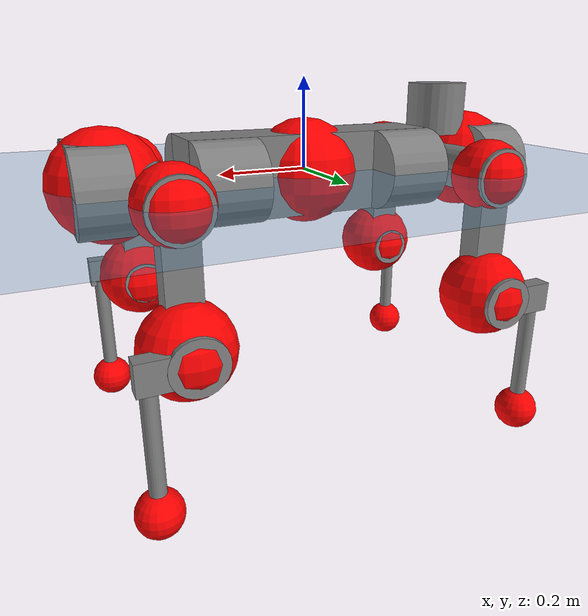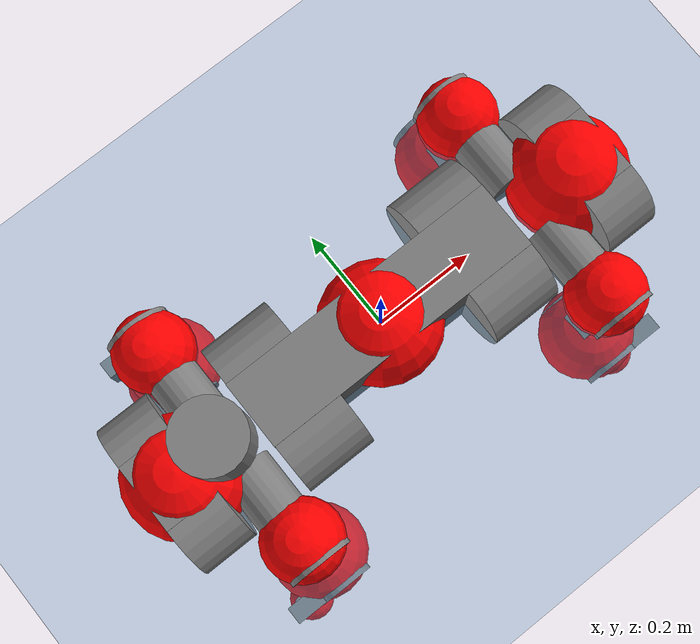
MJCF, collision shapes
<mujoco model="anymal_c">
  <compiler angle="radian" assetdir="assets" balanceinertia="true" inertiafromgeom="false"/>

  <option timestep="0.005" density="1.2" viscosity="2e-05"/>

  <size nkey="1"/>

  <visual>
    <quality shadowsize="8192"/>
    <map shadowclip="0.5"/>
  </visual>

  <default>
    <default class="/">
      <material specular="0" shininess="0.25"/>
      <geom contype="0" conaffinity="0" group="1" solref="-1000 -80"/>
      <site size="0.01 0.005 0.005" group="5"/>
      <general forcelimited="true" forcerange="-80 80" biastype="affine" gainprm="80" biasprm="0 -80 -2"/>
      <default class="anymal_c">
        <joint armature="0.01" damping="0.01" frictionloss="0.1"/>
        <default class="visual">
          <geom type="mesh" group="2"/>
          <default class="visual_zflip"/>
        </default>
        <default class="collision">
          <geom type="cylinder" group="3"/>
          <default class="foot">
            <geom size="0.03 0 0" type="sphere" condim="6" priority="1" friction="0.8 0.02 0.01" solimp="0.015 1 0.03"/>
          </default>
        </default>
      </default>
      <default class="reward_collision_sphere">
        <geom group="5" rgba="1 0 0 1"/>
      </default>
    </default>
  </default>

  <asset>
    <texture type="skybox" colorspace="auto" name="//unnamed_texture_0" builtin="gradient" rgb1="0.95 0.95 0.95" rgb2="0.95 0.95 0.95" width="100" height="600"/>
    <texture type="2d" colorspace="auto" name="texplane" builtin="checker" rgb1="0.345 0.575 0.748" rgb2="0.345 0.575 0.748" markrgb="1 1 1" width="512" height="512"/>
    <texture type="2d" colorspace="linear" name="base" file="base.png"/>
    <texture type="2d" colorspace="linear" name="top_shell" file="top_shell.png"/>
    <texture type="2d" colorspace="linear" name="bottom_shell" file="bottom_shell.png"/>
    <texture type="2d" colorspace="linear" name="remote" file="remote.png"/>
    <texture type="2d" colorspace="linear" name="hatch" file="hatch.png"/>
    <texture type="2d" colorspace="linear" name="handle" file="handle.png"/>
    <texture type="2d" colorspace="linear" name="face" file="face.png"/>
    <texture type="2d" colorspace="linear" name="battery" file="battery.png"/>
    <texture type="2d" colorspace="linear" name="lidar_cage" file="lidar_cage.png"/>
    <texture type="2d" colorspace="linear" name="depth_camera" file="depth_camera.png"/>
    <texture type="2d" colorspace="linear" name="wide_angle_camera" file="wide_angle_camera.png"/>
    <texture type="2d" colorspace="linear" name="lidar" file="lidar.png"/>
    <texture type="2d" colorspace="linear" name="drive" file="drive.png"/>
    <texture type="2d" colorspace="linear" name="hip_l" file="hip_l.png"/>
    <texture type="2d" colorspace="linear" name="shank_l" file="shank_l.png"/>
    <texture type="2d" colorspace="linear" name="foot" file="foot.png"/>
    <texture type="2d" colorspace="linear" name="thigh" file="thigh.png"/>
    <texture type="2d" colorspace="linear" name="shank_r" file="shank_r.png"/>
    <texture type="2d" colorspace="linear" name="hip_r" file="hip_r.png"/>
    <material name="MatPlane" class="/" texture="texplane" texuniform="true" texrepeat="2 2" specular="0.9" shininess="0.5"/>
    <material name="black_plastic" class="/" rgba="0.007 0.007 0.007 1"/>
    <material name="green" class="/" rgba="0.052 0.178 0.033 1"/>
    <material name="red" class="/" rgba="0.178 0.006 0.005 1"/>
    <material name="yellow" class="/" rgba="0.178 0.119 0.006 1"/>
    <material name="lwl" class="/" rgba="0.8 0.8 0.8 1"/>
    <material name="base" class="/" texture="base"/>
    <material name="top_shell" class="/" texture="top_shell"/>
    <material name="bottom_shell" class="/" texture="bottom_shell"/>
    <material name="hip_l" class="/" texture="hip_l"/>
    <material name="thigh" class="/" texture="thigh"/>
    <material name="shank_l" class="/" texture="shank_l"/>
    <material name="foot" class="/" texture="foot"/>
    <material name="hip_r" class="/" texture="hip_r"/>
    <material name="shank" class="/" texture="shank_r"/>
    <material name="hatch" class="/" texture="hatch"/>
    <material name="remote" class="/" texture="remote"/>
    <material name="handle" class="/" texture="handle"/>
    <material name="face" class="/" texture="face"/>
    <material name="depth_camera" class="/" texture="depth_camera"/>
    <material name="wide_angle_camera" class="/" texture="wide_angle_camera"/>
    <material name="battery" class="/" texture="battery"/>
    <material name="lidar_cage" class="/" texture="lidar_cage"/>
    <material name="lidar" class="/" texture="lidar"/>
    <material name="drive" class="/" texture="drive"/>
    <mesh name="base_0" class="/" file="base_0.obj"/>
    <mesh name="base_1" class="/" file="base_1.obj"/>
    <mesh name="base_2" class="/" file="base_2.obj"/>
    <mesh name="base_3" class="/" file="base_3.obj"/>
    <mesh name="base_4" class="/" file="base_4.obj"/>
    <mesh name="base_5" class="/" file="base_5.obj"/>
    <mesh name="top_shell" class="/" file="top_shell.obj"/>
    <mesh name="bottom_shell" class="/" file="bottom_shell.obj"/>
    <mesh name="remote" class="/" file="remote.obj"/>
    <mesh name="handle" class="/" file="handle.obj"/>
    <mesh name="face" class="/" file="face.obj"/>
    <mesh name="wide_angle_camera" class="/" file="wide_angle_camera.obj"/>
    <mesh name="depth_camera" class="/" file="depth_camera.obj"/>
    <mesh name="battery" class="/" file="battery.obj"/>
    <mesh name="lidar_cage" class="/" file="lidar_cage.obj"/>
    <mesh name="lidar" class="/" file="lidar.obj"/>
    <mesh name="drive" class="/" file="drive.obj"/>
    <mesh name="hip_l" class="/" file="hip_l.obj"/>
    <mesh name="thigh" class="/" file="thigh.obj"/>
    <mesh name="shank_l" class="/" file="shank_l.obj"/>
    <mesh name="foot" class="/" file="foot.obj"/>
    <mesh name="hip_r" class="/" file="hip_r.obj"/>
    <mesh name="hatch" class="/" file="hatch.obj"/>
    <mesh name="shank_r" class="/" file="shank_r.obj"/>
  </asset>

  <worldbody>
    <geom name="floor" class="/" size="100 100 0.125" type="plane" group="0" material="MatPlane"/>
    <light name="toplight_shadow" class="/" pos="0 0 5" dir="0.0990148 0.0990148 -0.990148" type="directional" ambient="0.04 0.04 0.04" diffuse="0.55 0.55 0.55" specular="0.12 0.12 0.12"/>
    <light name="toplight_fill" class="/" pos="0 0 5" dir="0.0990148 0.0990148 -0.990148" type="directional" castshadow="false" ambient="0.04 0.04 0.04" diffuse="0.3 0.3 0.3" specular="0.08 0.08 0.08"/>
    <body name="trunk" childclass="anymal_c" pos="-0.000598237 0.000860864 -0.00281343" quat="1 -0.000139838 0.000150319 2.80765e-05">
      <inertial pos="0.00244387 0.00241052 0.0442509" quat="0.496897 0.502935 0.500134 0.500015" mass="18.3797" diaginertia="0.564004 0.679929 0.169585"/>
      <joint name="//unnamed_joint_0" type="free" armature="0" damping="0" frictionloss="0"/>
      <geom name="//unnamed_geom_1" class="visual" material="green" mesh="base_0"/>
      <geom name="//unnamed_geom_2" class="visual" material="yellow" mesh="base_1"/>
      <geom name="//unnamed_geom_3" class="visual" material="red" mesh="base_2"/>
      <geom name="//unnamed_geom_4" class="visual" material="black_plastic" mesh="base_3"/>
      <geom name="//unnamed_geom_5" class="visual" material="lwl" mesh="base_4"/>
      <geom name="//unnamed_geom_6" class="visual" material="base" mesh="base_5"/>
      <geom name="trunk_1" class="collision" size="0.283043 0.0683207 0.0878409" type="box"/>
      <geom name="trunk_2" class="collision" size="0.0878409 0.0707608" pos="0.211442 0.0709309 0" quat="0.707107 0 0.707107 0"/>
      <geom name="trunk_3" class="collision" size="0.0878409 0.0707608" pos="-0.211442 0.0709309 0" quat="0.707107 0 0.707107 0"/>
      <geom name="trunk_4" class="collision" size="0.0878409 0.0707608" pos="0.211442 -0.0709309 0" quat="0.707107 0 0.707107 0"/>
      <geom name="trunk_5" class="collision" size="0.0878409 0.0707608" pos="-0.211442 -0.0709309 0" quat="0.707107 0 0.707107 0"/>
      <geom name="//unnamed_geom_12" class="visual" material="top_shell" mesh="top_shell"/>
      <geom name="//unnamed_geom_13" class="visual" material="bottom_shell" mesh="bottom_shell"/>
      <geom name="//unnamed_geom_14" class="visual" material="remote" mesh="remote"/>
      <geom name="//unnamed_geom_15" class="visual" material="handle" mesh="handle"/>
      <geom name="//unnamed_geom_16" class="visual" pos="0.402954 0 0" quat="1 0 0 0" material="face" mesh="face"/>
      <geom name="trunk_6" class="collision" size="0.0536806 0.0683207 0.0878409" pos="0.456422 0 0" type="box"/>
      <geom name="//unnamed_geom_18" class="collision" size="0.0878409 0.0536806" pos="0.456422 0.0709309 0" quat="0.707107 0 0.707107 0"/>
      <geom name="//unnamed_geom_19" class="collision" size="0.0878409 0.0536806" pos="0.456422 -0.0709309 0" quat="0.707107 0 0.707107 0"/>
      <geom name="//unnamed_geom_20" class="visual" pos="0.44879 0 -0.0272989" quat="0.965926 0 0.258819 0" material="depth_camera" mesh="depth_camera"/>
      <geom name="//unnamed_geom_21" class="visual" pos="0.498711 0 0.0141105" material="wide_angle_camera" mesh="wide_angle_camera"/>
      <geom name="//unnamed_geom_22" class="visual_zflip" pos="-0.402954 0 0" quat="0 0 0 1" material="face" mesh="face"/>
      <geom name="trunk_7" class="collision" size="0.0536806 0.0683207 0.0878409" pos="-0.456422 0 0" quat="0 0 0 1" type="box"/>
      <geom name="//unnamed_geom_24" class="collision" size="0.0878409 0.0536806" pos="-0.456422 -0.0709309 0" quat="0 -0.707107 0 0.707107"/>
      <geom name="//unnamed_geom_25" class="collision" size="0.0878409 0.0536806" pos="-0.456422 0.0709309 0" quat="0 -0.707107 0 0.707107"/>
      <geom name="//unnamed_geom_26" class="visual" pos="-0.44879 0 -0.0272989" quat="0 -0.258819 0 0.965926" material="depth_camera" mesh="depth_camera"/>
      <geom name="//unnamed_geom_27" class="visual_zflip" pos="-0.498711 0 0.0141105" quat="0 0 0 1" material="wide_angle_camera" mesh="wide_angle_camera"/>
      <geom name="//unnamed_geom_28" class="visual" material="battery" mesh="battery"/>
      <geom name="//unnamed_geom_29" class="visual" pos="0 0.0780155 0.0276068" quat="0.683013 -0.183013 0.183013 0.683013" material="depth_camera" mesh="depth_camera"/>
      <geom name="//unnamed_geom_30" class="visual" pos="0 -0.0780155 0.0276068" quat="0.683013 0.183013 0.183013 -0.683013" material="depth_camera" mesh="depth_camera"/>
      <geom name="//unnamed_geom_31" class="visual" pos="-0.353861 0 0.0692802" quat="1 0 0 0" material="lidar_cage" mesh="lidar_cage"/>
      <geom name="trunk_8" class="collision" size="0.0683207 0.0585606" pos="-0.353861 0 0.125835"/>
      <geom name="//unnamed_geom_33" class="visual" pos="-0.353861 1.61675e-05 0.134036" quat="0.707107 0 0 -0.707107" material="lidar" mesh="lidar"/>
      <geom name="//unnamed_geom_34" class="visual" pos="0.291547 0.105358 1.21976e-09" quat="0.258819 0.965926 0 0" material="drive" mesh="drive"/>
      <geom name="//unnamed_geom_35" class="visual" pos="0.291547 -0.105358 -1.21976e-09" quat="0.258819 -0.965926 0 0" material="drive" mesh="drive"/>
      <geom name="//unnamed_geom_36" class="visual" pos="-0.291547 0.105358 -1.21976e-09" quat="0 0 0.965926 -0.258819" material="drive" mesh="drive"/>
      <geom name="//unnamed_geom_37" class="visual" pos="-0.291547 -0.105358 1.21976e-09" quat="0 0 -0.965926 -0.258819" material="drive" mesh="drive"/>
      <geom name="//unnamed_geom_38" class="visual" pos="0.112769 0 0.0688089" quat="1 0 0 0" material="hatch" mesh="hatch"/>
      <geom name="//unnamed_geom_39" class="reward_collision_sphere" size="0.117121"/>
      <geom name="//unnamed_geom_40" class="reward_collision_sphere" size="0.117121" pos="0.437466 0 0"/>
      <geom name="//unnamed_geom_41" class="reward_collision_sphere" size="0.117121" pos="-0.437466 0 0"/>
      <site name="imu" pos="0.245467 0.0222744 0.0471371" size="0.00976011"/>
      <camera name="track" pos="0 -2.0266 0" quat="0.707107 0.707107 0 0" mode="trackcom"/>
      <camera name="ego_camera" pos="0.437466 0 -0.0377035" quat="-0.5 -0.5 0.5 0.5"/>
      <body name="LF_HIP" pos="0.291829 0.104162 0.00169426" quat="0.258387 0.966041 0.00137561 8.82462e-06">
        <inertial pos="0.056715 -0.0173424 -0.00776477" quat="-0.129044 0.709621 -0.133214 0.679736" mass="2.53557" diaginertia="0.00512635 0.00552804 0.00245468"/>
        <joint name="LF_HAA" pos="0 0 0" axis="0.999999 -0.00124211 -0.000278094" range="-0.724216 0.490396" armature="0.00972838" damping="0.0248306" frictionloss="0.0999331"/>
        <geom name="//unnamed_geom_42" class="visual" pos="0 7.17529e-05 -1.17854e-05" quat="0.258819 -0.965926 0 0" material="hip_l" mesh="hip_l"/>
        <geom name="//unnamed_geom_43" class="visual" pos="0.0582315 -0.0710766 -0.0405131" quat="0.183013 -0.683013 0.683013 0.183013" material="drive" mesh="drive"/>
        <geom name="//unnamed_geom_44" class="collision" size="0.0488005 0.0683207" pos="0.0582315 -0.0121188 -0.00650857" quat="-0.353553 -0.612372 0.612372 -0.353553"/>
        <body name="LF_THIGH" pos="0.0614392 -0.0750126 -0.0362421" quat="0.183162 -0.682529 0.68339 0.183257">
          <inertial pos="0.0323015 -0.00243326 -0.232136" quat="0.993247 -0.00568435 -0.0804672 0.0833855" mass="2.81266" diaginertia="0.026474 0.0307749 0.0029973"/>
          <joint name="LF_HFE" pos="0 0 0" axis="0.999959 0.00881224 0.00208127" stiffness="0.00494143" range="-3.09288 3.12917" armature="0.0084913" damping="0.0072594" frictionloss="0.0855622"/>
          <geom name="//unnamed_geom_45" class="visual" pos="-0.000818764 -1.29018e-06 0" quat="0.707107 0 0 -0.707107" material="thigh" mesh="thigh"/>
          <geom name="//unnamed_geom_46" class="collision" size="0.0634407 0.0390404" pos="0.0388858 0 0" quat="0.5 0.5 -0.5 -0.5"/>
          <geom name="//unnamed_geom_47" class="collision" size="0.0366004 0.0292803 0.137924" pos="0.0291644 0 -0.133201" quat="0.707107 0 0 -0.707107" type="box"/>
          <geom name="//unnamed_geom_48" class="visual" pos="0.0975062 0 -0.268638" quat="1 0 0 0" material="drive" mesh="drive"/>
          <geom name="//unnamed_geom_49" class="collision" size="0.0488005 0.0683207" pos="0.029456 0 -0.268638" quat="0.707107 0 0.707107 0"/>
          <geom name="//unnamed_geom_50" class="reward_collision_sphere" size="0.0780808" pos="0.0243036 0 0"/>
          <body name="LF_SHANK" pos="0.0978442 -0.000744857 -0.268494" quat="0.999999 0.000166605 0.00132358 -0.000129013">
            <inertial pos="0.00380291 -0.0621903 -0.0736641" quat="0.993078 -0.116163 0.00782931 -0.0154902" mass="0.545849" diaginertia="0.00843862 0.0100682 0.000846226"/>
            <joint name="LF_KFE" pos="0 0 0" axis="0.99992 0.00745169 -0.0102469" stiffness="0.00830658" range="-3.15074 3.12008" armature="0.0110129" damping="2.30556e-05" frictionloss="0.111197"/>
            <geom name="//unnamed_geom_51" class="visual" pos="-0.000266981 -0.00142356 0" quat="0.707107 0 0 -0.707107" material="shank_l" mesh="shank_l"/>
            <geom name="LF_kfe_act" class="collision" size="0.0585606 0.0195202" pos="0.0194429 0 0" quat="0.5 0.5 -0.5 -0.5"/>
            <geom name="//unnamed_geom_53" class="collision" size="0.0561196 0.0329404 0.0185442" pos="0.0194429 -0.0582636 0" quat="0.5 0.5 -0.5 -0.5" type="box"/>
            <geom name="//unnamed_geom_54" class="visual" pos="0.0126866 -0.0895783 -0.318566" quat="0.382683 0 0 -0.92388" material="foot" mesh="foot"/>
            <geom name="LF_calf" class="collision" size="0.0170802 0.137863" pos="0.0126865 -0.0891196 -0.159283" quat="0.707107 0 0 -0.707107"/>
            <geom name="LF_foot" class="foot" size="0.0256027" pos="0.0126865 -0.0891196 -0.297358" quat="0.707107 0 0 -0.707107"/>
            <geom name="//unnamed_geom_57" class="reward_collision_sphere" size="0.0976011" pos="-0.0486073 0 0"/>
            <geom name="//unnamed_geom_58" class="reward_collision_sphere" size="0.0488005" pos="0.0126865 -0.0891196 -0.297358"/>
            <site name="LF_foot" class="foot" pos="0.0126865 -0.0891196 -0.297358" quat="0.707107 0 0 -0.707107" size="0.00976011"/>
          </body>
        </body>
      </body>
      <body name="RF_HIP" pos="0.292598 -0.104483 -0.000240991" quat="0.259131 -0.965842 0.000451794 0.000826956">
        <inertial pos="0.0580394 0.0147853 -0.00836725" quat="0.13798 0.676003 0.123379 0.713273" mass="2.58373" diaginertia="0.00479171 0.00508588 0.00229103"/>
        <joint name="RF_HAA" pos="0 0 0" axis="0.999924 0.00878736 0.00863583" range="-0.446004 0.720098" armature="0.0107195" damping="0.00617607" frictionloss="0.0913735"/>
        <geom name="//unnamed_geom_59" class="visual" pos="0 -7.17524e-05 -1.17853e-05" quat="0.258819 0.965926 0 0" material="hip_r" mesh="hip_r"/>
        <geom name="//unnamed_geom_60" class="visual" pos="0.0582315 0.0710766 -0.0405131" quat="0.183013 0.683013 0.683013 -0.183013" material="drive" mesh="drive"/>
        <geom name="//unnamed_geom_61" class="collision" size="0.0488005 0.0683207" pos="0.0582315 0.0121188 -0.00650857" quat="-0.353553 0.612372 0.612372 0.353553"/>
        <body name="RF_THIGH" pos="0.0588739 0.0739568 -0.0394671" quat="0.182706 0.683161 0.682723 -0.183846">
          <inertial pos="0.0328199 -0.00191844 -0.230697" quat="0.993553 0.00204694 -0.0815383 0.0787446" mass="2.84311" diaginertia="0.0255334 0.0299015 0.0030566"/>
          <joint name="RF_HFE" pos="0 0 0" axis="0.999919 0.00226876 0.0125289" range="-3.14603 3.17215" armature="0.00985348" damping="0.00593739" frictionloss="0.111211"/>
          <geom name="//unnamed_geom_62" class="visual" pos="-0.000818764 -1.29018e-06 0" quat="0.707107 0 0 -0.707107" material="thigh" mesh="thigh"/>
          <geom name="//unnamed_geom_63" class="collision" size="0.0634407 0.0390404" pos="0.0388858 0 0" quat="0.5 0.5 0.5 0.5"/>
          <geom name="//unnamed_geom_64" class="collision" size="0.0366004 0.0292803 0.137924" pos="0.0291644 0 -0.133201" quat="0.707107 0 0 0.707107" type="box"/>
          <geom name="//unnamed_geom_65" class="visual" pos="0.0975062 0 -0.268638" quat="1 0 0 0" material="drive" mesh="drive"/>
          <geom name="//unnamed_geom_66" class="collision" size="0.0488005 0.0683207" pos="0.029456 0 -0.268638" quat="0.707107 0 0.707107 0"/>
          <geom name="//unnamed_geom_67" class="reward_collision_sphere" size="0.0780808" pos="0.0243036 0 0"/>
          <body name="RF_SHANK" pos="0.0947958 -0.00155963 -0.271242" quat="1 -6.99364e-05 -1.78161e-05 -5.33571e-05">
            <inertial pos="0.00526328 0.0611521 -0.0762971" quat="0.993376 0.112494 -6.49988e-05 0.0234258" mass="0.551899" diaginertia="0.00878857 0.00984945 0.000807523"/>
            <joint name="RF_KFE" pos="0 0 0" axis="0.999999 -0.000999527 -0.00117855" range="-3.14671 3.18254" armature="0.00861141" damping="0.0181353" frictionloss="0.0844085"/>
            <geom name="//unnamed_geom_68" class="visual" pos="-0.00026698 0.00142355 0" quat="0.707107 0 0 0.707107" material="shank" mesh="shank_r"/>
            <geom name="RF_kfe_act" class="collision" size="0.0585606 0.0195202" pos="0.0194429 0 0" quat="0.5 0.5 0.5 0.5"/>
            <geom name="//unnamed_geom_70" class="collision" size="0.0561196 0.0329404 0.0185442" pos="0.0194429 0.0582636 0" quat="0.5 0.5 0.5 0.5" type="box"/>
            <geom name="//unnamed_geom_71" class="visual" pos="0.0126864 0.0895783 -0.318566" quat="0.382683 0 0 0.92388" material="foot" mesh="foot"/>
            <geom name="RF_calf" class="collision" size="0.0170802 0.137863" pos="0.0126865 0.0891196 -0.159283" quat="0.707107 0 0 0.707107"/>
            <geom name="RF_foot" class="foot" size="0.0243153" pos="0.0126865 0.0891196 -0.297358" quat="0.707107 0 0 0.707107"/>
            <geom name="//unnamed_geom_74" class="reward_collision_sphere" size="0.0976011" pos="-0.0486073 0 0"/>
            <geom name="//unnamed_geom_75" class="reward_collision_sphere" size="0.0488005" pos="0.0126865 0.0891196 -0.297358"/>
            <site name="RF_foot" class="foot" pos="0.0126865 0.0891196 -0.297358" quat="0.707107 0 0 0.707107" size="0.00976011"/>
          </body>
        </body>
      </body>
      <body name="LH_HIP" pos="-0.291 0.105419 -0.00144298" quat="0.000184186 0.000152039 0.966088 -0.258213">
        <inertial pos="0.0578706 0.0154456 -0.00992463" quat="0.13903 0.677241 0.128015 0.711075" mass="2.63318" diaginertia="0.00512511 0.00539446 0.00250599"/>
        <joint name="LH_HAA" pos="0 0 0" axis="0.999994 -0.00275547 0.00230778" stiffness="0.00814508" range="-0.499802 0.670179" armature="0.00908223" damping="0" frictionloss="0.10176"/>
        <geom name="//unnamed_geom_76" class="visual" pos="0 -7.17524e-05 -1.17853e-05" quat="-0.258819 -0.965926 0 0" material="hip_r" mesh="hip_r"/>
        <geom name="//unnamed_geom_77" class="visual" pos="0.0582315 0.0710766 -0.0405131" quat="0.183013 0.683013 0.683013 -0.183013" material="drive" mesh="drive"/>
        <geom name="//unnamed_geom_78" class="collision" size="0.0488005 0.0683207" pos="0.0582315 0.0121188 -0.00650857" quat="-0.353553 0.612372 0.612372 0.353553"/>
        <body name="LH_THIGH" pos="0.0573686 0.0725276 -0.0391074" quat="0.183161 0.68273 0.683203 -0.183211">
          <inertial pos="0.0297585 -0.000422678 -0.230697" quat="0.99131 -0.00869069 -0.0853217 0.0997449" mass="2.92321" diaginertia="0.0265491 0.0329392 0.00328504"/>
          <joint name="LH_HFE" pos="0 0 0" axis="0.99994 0.00921766 0.00584803" stiffness="0.00650171" range="-3.16206 3.12179" armature="0.010643" damping="0" frictionloss="0.0968632"/>
          <geom name="//unnamed_geom_79" class="visual" pos="-0.000818764 -1.29018e-06 0" quat="0.707107 0 0 -0.707107" material="thigh" mesh="thigh"/>
          <geom name="//unnamed_geom_80" class="collision" size="0.0634407 0.0390404" pos="0.0388858 0 0" quat="0.5 0.5 -0.5 -0.5"/>
          <geom name="//unnamed_geom_81" class="collision" size="0.0366004 0.0292803 0.137924" pos="0.0291644 0 -0.133201" quat="0.707107 0 0 -0.707107" type="box"/>
          <geom name="//unnamed_geom_82" class="visual" pos="0.0975062 0 -0.268638" quat="1 0 0 0" material="drive" mesh="drive"/>
          <geom name="//unnamed_geom_83" class="collision" size="0.0488005 0.0683207" pos="0.029456 0 -0.268638" quat="0.707107 0 0.707107 0"/>
          <geom name="//unnamed_geom_84" class="reward_collision_sphere" size="0.0780808" pos="0.0243036 0 0"/>
          <body name="LH_SHANK" pos="0.0971997 -0.00199691 -0.268943" quat="1 1.64116e-05 0.000143135 -0.000236542">
            <inertial pos="0.00279576 0.0617138 -0.0769005" quat="0.992912 0.11766 -0.00905175 0.0141524" mass="0.563404" diaginertia="0.00877552 0.0100413 0.000862014"/>
            <joint name="LH_KFE" pos="0 0 0" axis="0.999999 -0.000470922 -0.00094337" stiffness="0.00111531" range="-3.15187 3.19533" armature="0.0109922" damping="0" frictionloss="0.0972255"/>
            <geom name="//unnamed_geom_85" class="visual" pos="-0.00026698 0.00142355 0" quat="-0.707107 0 0 -0.707107" material="shank" mesh="shank_r"/>
            <geom name="LH_kfe_act" class="collision" size="0.0585606 0.0195202" pos="0.0194429 0 0" quat="0.5 0.5 -0.5 -0.5"/>
            <geom name="//unnamed_geom_87" class="collision" size="0.0561196 0.0329404 0.0185442" pos="0.0194429 0.0582636 0" quat="0.5 0.5 -0.5 -0.5" type="box"/>
            <geom name="//unnamed_geom_88" class="visual" pos="0.0126864 0.0895783 -0.318566" quat="-0.382683 0 0 -0.92388" material="foot" mesh="foot"/>
            <geom name="LH_calf" class="collision" size="0.0170802 0.137863" pos="0.0126865 0.0891196 -0.159283" quat="0.707107 0 0 -0.707107"/>
            <geom name="LH_foot" class="foot" size="0.0288864" pos="0.0126865 0.0891196 -0.297358" quat="0.707107 0 0 -0.707107"/>
            <geom name="//unnamed_geom_91" class="reward_collision_sphere" size="0.0976011" pos="-0.0486073 0 0"/>
            <geom name="//unnamed_geom_92" class="reward_collision_sphere" size="0.0488005" pos="0.0126865 0.0891196 -0.297358"/>
            <site name="LH_foot" class="foot" pos="0.0126865 0.0891196 -0.297358" quat="0.707107 0 0 -0.707107" size="0.00976011"/>
          </body>
        </body>
      </body>
      <body name="RH_HIP" pos="-0.289207 -0.107987 0.000522253" quat="-2.55058e-05 7.04341e-08 -0.965922 -0.258835">
        <inertial pos="0.0549449 -0.0135392 -0.00786491" quat="-0.129884 0.717146 -0.131224 0.672021" mass="2.59152" diaginertia="0.00515699 0.00535037 0.00248352"/>
        <joint name="RH_HAA" pos="0 0 0" axis="0.999999 -0.00139304 0.000914761" stiffness="0.00779369" range="-0.674506 0.503883" armature="0.00827513" damping="0.0109922" frictionloss="0.102041"/>
        <geom name="//unnamed_geom_93" class="visual" pos="0 7.17529e-05 -1.17854e-05" quat="-0.258819 0.965926 0 0" material="hip_l" mesh="hip_l"/>
        <geom name="//unnamed_geom_94" class="visual" pos="0.0582315 -0.0710766 -0.0405131" quat="-0.183013 0.683013 -0.683013 -0.183013" material="drive" mesh="drive"/>
        <geom name="//unnamed_geom_95" class="collision" size="0.0488005 0.0683207" pos="0.0582315 -0.0121188 -0.00650857" quat="0.353553 0.612372 -0.612372 0.353553"/>
        <body name="RH_THIGH" pos="0.0563987 -0.0739348 -0.0395442" quat="-0.183007 0.682947 -0.683035 -0.183179">
          <inertial pos="0.0304617 0.000275224 -0.231291" quat="0.993227 -0.00468299 -0.0794553 0.0846492" mass="2.81415" diaginertia="0.0260953 0.0329449 0.00313479"/>
          <joint name="RH_HFE" pos="0 0 0" axis="0.999979 0.0011776 0.00632182" stiffness="0.00989203" range="-3.14132 3.16608" armature="0.01001" damping="0.00365389" frictionloss="0.102314"/>
          <geom name="//unnamed_geom_96" class="visual" pos="-0.000818764 -1.29018e-06 0" quat="0.707107 0 0 -0.707107" material="thigh" mesh="thigh"/>
          <geom name="//unnamed_geom_97" class="collision" size="0.0634407 0.0390404" pos="0.0388858 0 0" quat="0.5 0.5 0.5 0.5"/>
          <geom name="//unnamed_geom_98" class="collision" size="0.0366004 0.0292803 0.137924" pos="0.0291644 0 -0.133201" quat="0.707107 0 0 0.707107" type="box"/>
          <geom name="//unnamed_geom_99" class="visual" pos="0.0975062 0 -0.268638" quat="1 0 0 0" material="drive" mesh="drive"/>
          <geom name="//unnamed_geom_100" class="collision" size="0.0488005 0.0683207" pos="0.029456 0 -0.268638" quat="0.707107 0 0.707107 0"/>
          <geom name="//unnamed_geom_101" class="reward_collision_sphere" size="0.0780808" pos="0.0243036 0 0"/>
          <body name="RH_SHANK" pos="0.0976154 -0.000812942 -0.264704" quat="1 -0.000200985 -0.000162132 8.20474e-05">
            <inertial pos="0.00328357 -0.0618202 -0.0751949" quat="0.992628 -0.118614 -0.0137858 -0.0207648" mass="0.549429" diaginertia="0.00905773 0.00970499 0.000843405"/>
            <joint name="RH_KFE" pos="0 0 0" axis="0.999989 -0.00213706 0.004162" stiffness="0.00122384" range="-3.16145 3.139" armature="0.00875916" damping="0.0137683" frictionloss="0.0883137"/>
            <geom name="//unnamed_geom_102" class="visual" pos="-0.000266981 -0.00142356 0" quat="0.707107 0 0 -0.707107" material="shank_l" mesh="shank_l"/>
            <geom name="RH_kfe_act" class="collision" size="0.0585606 0.0195202" pos="0.0194429 0 0" quat="0.5 0.5 0.5 0.5"/>
            <geom name="//unnamed_geom_104" class="collision" size="0.0561196 0.0329404 0.0185442" pos="0.0194429 -0.0582636 0" quat="0.5 0.5 0.5 0.5" type="box"/>
            <geom name="//unnamed_geom_105" class="visual" pos="0.0126866 -0.0895783 -0.318566" quat="0.382683 0 0 -0.92388" material="foot" mesh="foot"/>
            <geom name="RH_calf" class="collision" size="0.0170802 0.137863" pos="0.0126865 -0.0891196 -0.159283" quat="0.707107 0 0 0.707107"/>
            <geom name="RH_foot" class="foot" size="0.028782" pos="0.0126865 -0.0891196 -0.297358" quat="0.707107 0 0 0.707107"/>
            <geom name="//unnamed_geom_108" class="reward_collision_sphere" size="0.0976011" pos="-0.0486073 0 0"/>
            <geom name="//unnamed_geom_109" class="reward_collision_sphere" size="0.0488005" pos="0.0126865 -0.0891196 -0.297358"/>
            <site name="RH_foot" class="foot" pos="0.0126865 -0.0891196 -0.297358" quat="0.707107 0 0 0.707107" size="0.00976011"/>
          </body>
        </body>
      </body>
    </body>
  </worldbody>

  <contact>
    <pair class="/" geom1="floor" geom2="LF_foot" name="//unnamed_contact_0"/>
    <pair class="/" geom1="floor" geom2="RF_foot" name="//unnamed_contact_1"/>
    <pair class="/" geom1="floor" geom2="LH_foot" name="//unnamed_contact_2"/>
    <pair class="/" geom1="floor" geom2="RH_foot" name="//unnamed_contact_3"/>
  </contact>

  <actuator>
    <general name="LF_HAA" class="/" joint="LF_HAA" forcerange="-79.218 79.218" gainprm="83.5077" biasprm="0 -83.5077 -1.98244"/>
    <general name="LF_HFE" class="/" joint="LF_HFE" forcerange="-69.8694 69.8694" gainprm="83.5077" biasprm="0 -83.5077 -1.98244"/>
    <general name="LF_KFE" class="/" joint="LF_KFE" forcerange="-79.5942 79.5942" gainprm="83.5077" biasprm="0 -83.5077 -1.98244"/>
    <general name="RF_HAA" class="/" joint="RF_HAA" forcerange="-80.6729 80.6729" gainprm="83.5077" biasprm="0 -83.5077 -1.98244"/>
    <general name="RF_HFE" class="/" joint="RF_HFE" forcerange="-88.2101 88.2101" gainprm="83.5077" biasprm="0 -83.5077 -1.98244"/>
    <general name="RF_KFE" class="/" joint="RF_KFE" forcerange="-77.352 77.352" gainprm="83.5077" biasprm="0 -83.5077 -1.98244"/>
    <general name="LH_HAA" class="/" joint="LH_HAA" forcerange="-78.4417 78.4417" gainprm="83.5077" biasprm="0 -83.5077 -1.98244"/>
    <general name="LH_HFE" class="/" joint="LH_HFE" forcerange="-70.6769 70.6769" gainprm="83.5077" biasprm="0 -83.5077 -1.98244"/>
    <general name="LH_KFE" class="/" joint="LH_KFE" forcerange="-77.7168 77.7168" gainprm="83.5077" biasprm="0 -83.5077 -1.98244"/>
    <general name="RH_HAA" class="/" joint="RH_HAA" forcerange="-71.6008 71.6008" gainprm="83.5077" biasprm="0 -83.5077 -1.98244"/>
    <general name="RH_HFE" class="/" joint="RH_HFE" forcerange="-79.4407 79.4407" gainprm="83.5077" biasprm="0 -83.5077 -1.98244"/>
    <general name="RH_KFE" class="/" joint="RH_KFE" forcerange="-78.8944 78.8944" gainprm="83.5077" biasprm="0 -83.5077 -1.98244"/>
  </actuator>

  <sensor>
    <gyro site="imu" name="imu_angular_velocity"/>
    <velocimeter site="imu" name="imu_linear_velocity"/>
    <framelinvel objtype="site" objname="LF_foot" name="LF_foot_global_linear_velocity"/>
    <framelinvel objtype="site" objname="RF_foot" name="RF_foot_global_linear_velocity"/>
    <framelinvel objtype="site" objname="LH_foot" name="LH_foot_global_linear_velocity"/>
    <framelinvel objtype="site" objname="RH_foot" name="RH_foot_global_linear_velocity"/>
  </sensor>

  <keyframe>
    <key name="home" qpos="0 0 0.55 1 0 0 0 0 0.4 -0.8 0 -0.4 0.8 0 -0.4 0.8 0 0.4 -0.8"/>
  </keyframe>
</mujoco>
